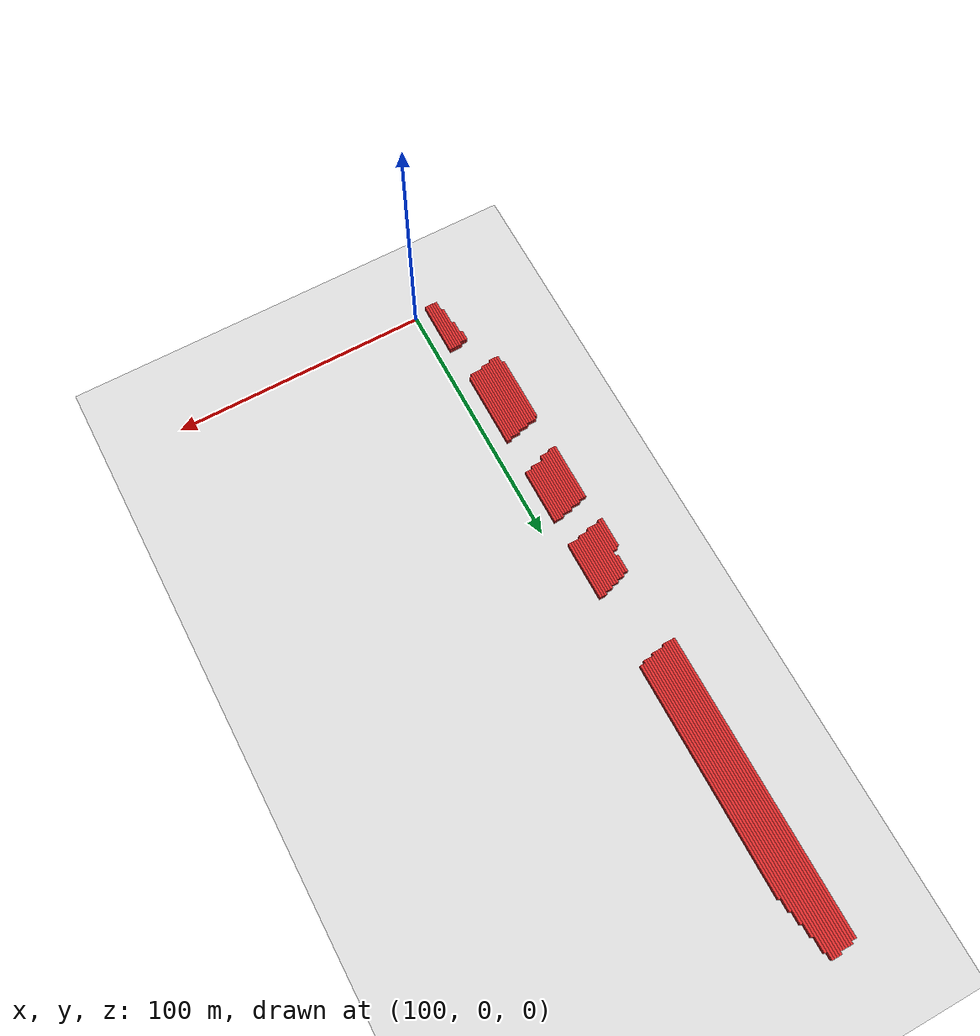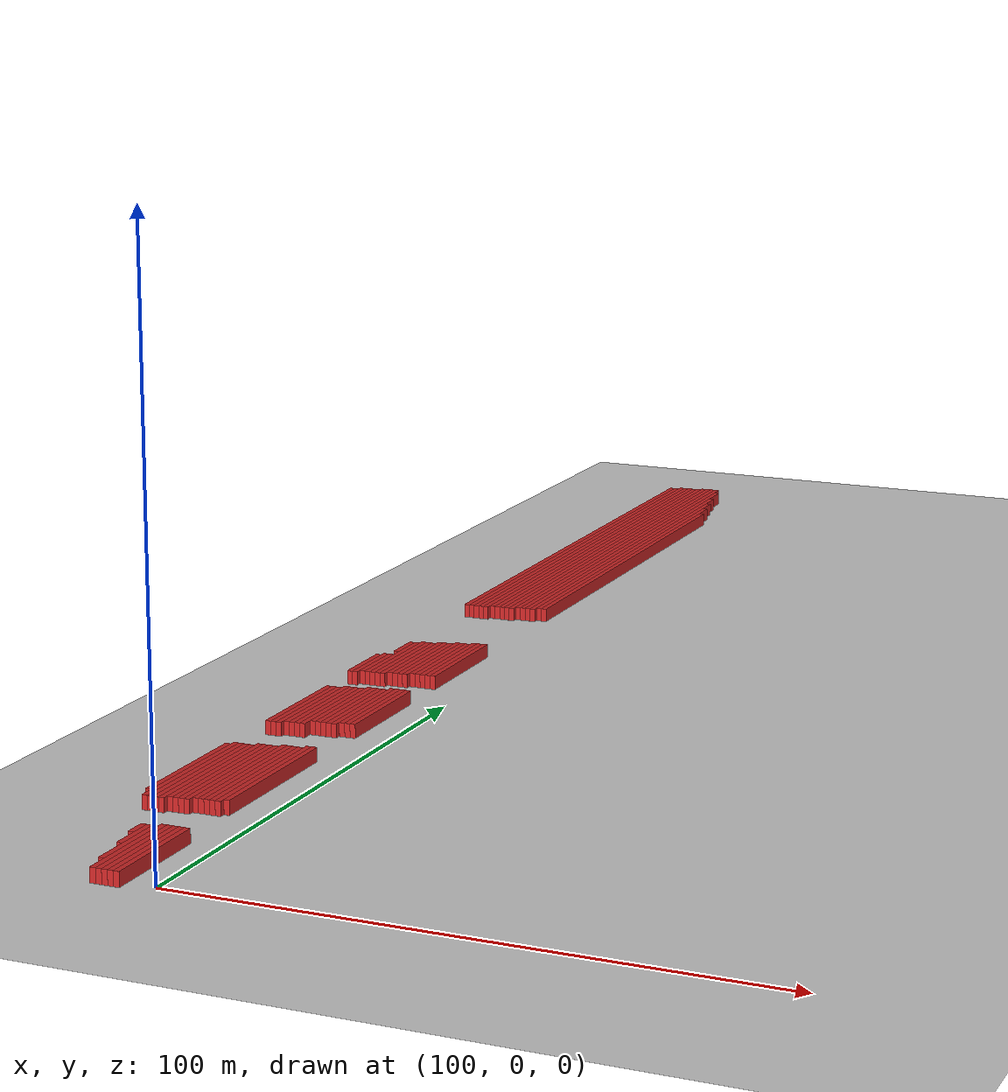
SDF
<sdf version="1.4">
 <world name="1_wall">
  <model name="ground_plane">
   <static>1</static>
   <link name="link">
    <collision name="collision">
     <geometry><plane><normal>0 0 1</normal><size>1000 1000</size></plane></geometry>
     <surface><friction><ode><mu>100</mu><mu2>50</mu2></ode></friction></surface>
    </collision>
    <visual name="visual">
     <cast_shadows>0</cast_shadows>
     <geometry><plane><normal>0 0 1</normal><size>10000 10000</size></plane></geometry>
     <material>
      <script><uri>file://media/materials/scripts/gazebo.material</uri><name>Gazebo/Grey</name></script>
     </material>
    </visual>
    <velocity_decay><linear>0</linear><angular>0</angular></velocity_decay>
   </link>
  </model>
  <model name="Wall_214">
   <static>1</static>
   <link name="Wall_214">
    <collision name="Wall_Collision_214">
     <geometry><box><size>12.0 1.0 2.5</size></box></geometry>
     <pose>0 0 1.25 0 -0 0</pose>
    </collision>
    <visual name="Wall_Visual_214">
     <pose>0 0 1.25 0 -0 0</pose>
     <geometry><box><size>12.0 1.0 2.5</size></box></geometry>
     <material>
      <script><uri>file://media/materials/scripts/gazebo.material</uri><name>Gazebo/Red</name></script>
     </material>
    </visual>
    <velocity_decay><linear>0</linear><angular>0</angular></velocity_decay>
    <pose>78.5 112.0 0 0 0 1.5707963267948966</pose>
   </link>
  </model>
  <model name="Wall_215">
   <static>1</static>
   <link name="Wall_215">
    <collision name="Wall_Collision_215">
     <geometry><box><size>114.0 1.0 2.5</size></box></geometry>
     <pose>0 0 1.25 0 -0 0</pose>
    </collision>
    <visual name="Wall_Visual_215">
     <pose>0 0 1.25 0 -0 0</pose>
     <geometry><box><size>114.0 1.0 2.5</size></box></geometry>
     <material>
      <script><uri>file://media/materials/scripts/gazebo.material</uri><name>Gazebo/Red</name></script>
     </material>
    </visual>
    <velocity_decay><linear>0</linear><angular>0</angular></velocity_decay>
    <pose>78.5 214.0 0 0 0 1.5707963267948966</pose>
   </link>
  </model>
  <model name="Wall_216">
   <static>1</static>
   <link name="Wall_216">
    <collision name="Wall_Collision_216">
     <geometry><box><size>26.0 1.0 2.5</size></box></geometry>
     <pose>0 0 1.25 0 -0 0</pose>
    </collision>
    <visual name="Wall_Visual_216">
     <pose>0 0 1.25 0 -0 0</pose>
     <geometry><box><size>26.0 1.0 2.5</size></box></geometry>
     <material>
      <script><uri>file://media/materials/scripts/gazebo.material</uri><name>Gazebo/Red</name></script>
     </material>
    </visual>
    <velocity_decay><linear>0</linear><angular>0</angular></velocity_decay>
    <pose>79.5 46.0 0 0 0 1.5707963267948966</pose>
   </link>
  </model>
  <model name="Wall_217">
   <static>1</static>
   <link name="Wall_217">
    <collision name="Wall_Collision_217">
     <geometry><box><size>23.0 1.0 2.5</size></box></geometry>
     <pose>0 0 1.25 0 -0 0</pose>
    </collision>
    <visual name="Wall_Visual_217">
     <pose>0 0 1.25 0 -0 0</pose>
     <geometry><box><size>23.0 1.0 2.5</size></box></geometry>
     <material>
      <script><uri>file://media/materials/scripts/gazebo.material</uri><name>Gazebo/Red</name></script>
     </material>
    </visual>
    <velocity_decay><linear>0</linear><angular>0</angular></velocity_decay>
    <pose>79.5 84.5 0 0 0 1.5707963267948966</pose>
   </link>
  </model>
  <model name="Wall_218">
   <static>1</static>
   <link name="Wall_218">
    <collision name="Wall_Collision_218">
     <geometry><box><size>13.0 1.0 2.5</size></box></geometry>
     <pose>0 0 1.25 0 -0 0</pose>
    </collision>
    <visual name="Wall_Visual_218">
     <pose>0 0 1.25 0 -0 0</pose>
     <geometry><box><size>13.0 1.0 2.5</size></box></geometry>
     <material>
      <script><uri>file://media/materials/scripts/gazebo.material</uri><name>Gazebo/Red</name></script>
     </material>
    </visual>
    <velocity_decay><linear>0</linear><angular>0</angular></velocity_decay>
    <pose>79.5 112.5 0 0 0 1.5707963267948966</pose>
   </link>
  </model>
  <model name="Wall_219">
   <static>1</static>
   <link name="Wall_219">
    <collision name="Wall_Collision_219">
     <geometry><box><size>114.0 1.0 2.5</size></box></geometry>
     <pose>0 0 1.25 0 -0 0</pose>
    </collision>
    <visual name="Wall_Visual_219">
     <pose>0 0 1.25 0 -0 0</pose>
     <geometry><box><size>114.0 1.0 2.5</size></box></geometry>
     <material>
      <script><uri>file://media/materials/scripts/gazebo.material</uri><name>Gazebo/Red</name></script>
     </material>
    </visual>
    <velocity_decay><linear>0</linear><angular>0</angular></velocity_decay>
    <pose>79.5 214.0 0 0 0 1.5707963267948966</pose>
   </link>
  </model>
  <model name="Wall_220">
   <static>1</static>
   <link name="Wall_220">
    <collision name="Wall_Collision_220">
     <geometry><box><size>30.0 1.0 2.5</size></box></geometry>
     <pose>0 0 1.25 0 -0 0</pose>
    </collision>
    <visual name="Wall_Visual_220">
     <pose>0 0 1.25 0 -0 0</pose>
     <geometry><box><size>30.0 1.0 2.5</size></box></geometry>
     <material>
      <script><uri>file://media/materials/scripts/gazebo.material</uri><name>Gazebo/Red</name></script>
     </material>
    </visual>
    <velocity_decay><linear>0</linear><angular>0</angular></velocity_decay>
    <pose>80.5 45.0 0 0 0 1.5707963267948966</pose>
   </link>
  </model>
  <model name="Wall_221">
   <static>1</static>
   <link name="Wall_221">
    <collision name="Wall_Collision_221">
     <geometry><box><size>23.0 1.0 2.5</size></box></geometry>
     <pose>0 0 1.25 0 -0 0</pose>
    </collision>
    <visual name="Wall_Visual_221">
     <pose>0 0 1.25 0 -0 0</pose>
     <geometry><box><size>23.0 1.0 2.5</size></box></geometry>
     <material>
      <script><uri>file://media/materials/scripts/gazebo.material</uri><name>Gazebo/Red</name></script>
     </material>
    </visual>
    <velocity_decay><linear>0</linear><angular>0</angular></velocity_decay>
    <pose>80.5 84.5 0 0 0 1.5707963267948966</pose>
   </link>
  </model>
  <model name="Wall_222">
   <static>1</static>
   <link name="Wall_222">
    <collision name="Wall_Collision_222">
     <geometry><box><size>12.0 1.0 2.5</size></box></geometry>
     <pose>0 0 1.25 0 -0 0</pose>
    </collision>
    <visual name="Wall_Visual_222">
     <pose>0 0 1.25 0 -0 0</pose>
     <geometry><box><size>12.0 1.0 2.5</size></box></geometry>
     <material>
      <script><uri>file://media/materials/scripts/gazebo.material</uri><name>Gazebo/Red</name></script>
     </material>
    </visual>
    <velocity_decay><linear>0</linear><angular>0</angular></velocity_decay>
    <pose>80.5 113.0 0 0 0 1.5707963267948966</pose>
   </link>
  </model>
  <model name="Wall_223">
   <static>1</static>
   <link name="Wall_223">
    <collision name="Wall_Collision_223">
     <geometry><box><size>7.0 1.0 2.5</size></box></geometry>
     <pose>0 0 1.25 0 -0 0</pose>
    </collision>
    <visual name="Wall_Visual_223">
     <pose>0 0 1.25 0 -0 0</pose>
     <geometry><box><size>7.0 1.0 2.5</size></box></geometry>
     <material>
      <script><uri>file://media/materials/scripts/gazebo.material</uri><name>Gazebo/Red</name></script>
     </material>
    </visual>
    <velocity_decay><linear>0</linear><angular>0</angular></velocity_decay>
    <pose>80.5 124.5 0 0 0 1.5707963267948966</pose>
   </link>
  </model>
  <model name="Wall_224">
   <static>1</static>
   <link name="Wall_224">
    <collision name="Wall_Collision_224">
     <geometry><box><size>115.0 1.0 2.5</size></box></geometry>
     <pose>0 0 1.25 0 -0 0</pose>
    </collision>
    <visual name="Wall_Visual_224">
     <pose>0 0 1.25 0 -0 0</pose>
     <geometry><box><size>115.0 1.0 2.5</size></box></geometry>
     <material>
      <script><uri>file://media/materials/scripts/gazebo.material</uri><name>Gazebo/Red</name></script>
     </material>
    </visual>
    <velocity_decay><linear>0</linear><angular>0</angular></velocity_decay>
    <pose>80.5 214.5 0 0 0 1.5707963267948966</pose>
   </link>
  </model>
  <model name="Wall_225">
   <static>1</static>
   <link name="Wall_225">
    <collision name="Wall_Collision_225">
     <geometry><box><size>30.0 1.0 2.5</size></box></geometry>
     <pose>0 0 1.25 0 -0 0</pose>
    </collision>
    <visual name="Wall_Visual_225">
     <pose>0 0 1.25 0 -0 0</pose>
     <geometry><box><size>30.0 1.0 2.5</size></box></geometry>
     <material>
      <script><uri>file://media/materials/scripts/gazebo.material</uri><name>Gazebo/Red</name></script>
     </material>
    </visual>
    <velocity_decay><linear>0</linear><angular>0</angular></velocity_decay>
    <pose>81.5 45.0 0 0 0 1.5707963267948966</pose>
   </link>
  </model>
  <model name="Wall_226">
   <static>1</static>
   <link name="Wall_226">
    <collision name="Wall_Collision_226">
     <geometry><box><size>23.0 1.0 2.5</size></box></geometry>
     <pose>0 0 1.25 0 -0 0</pose>
    </collision>
    <visual name="Wall_Visual_226">
     <pose>0 0 1.25 0 -0 0</pose>
     <geometry><box><size>23.0 1.0 2.5</size></box></geometry>
     <material>
      <script><uri>file://media/materials/scripts/gazebo.material</uri><name>Gazebo/Red</name></script>
     </material>
    </visual>
    <velocity_decay><linear>0</linear><angular>0</angular></velocity_decay>
    <pose>81.5 84.5 0 0 0 1.5707963267948966</pose>
   </link>
  </model>
  <model name="Wall_227">
   <static>1</static>
   <link name="Wall_227">
    <collision name="Wall_Collision_227">
     <geometry><box><size>21.0 1.0 2.5</size></box></geometry>
     <pose>0 0 1.25 0 -0 0</pose>
    </collision>
    <visual name="Wall_Visual_227">
     <pose>0 0 1.25 0 -0 0</pose>
     <geometry><box><size>21.0 1.0 2.5</size></box></geometry>
     <material>
      <script><uri>file://media/materials/scripts/gazebo.material</uri><name>Gazebo/Red</name></script>
     </material>
    </visual>
    <velocity_decay><linear>0</linear><angular>0</angular></velocity_decay>
    <pose>81.5 117.5 0 0 0 1.5707963267948966</pose>
   </link>
  </model>
  <model name="Wall_228">
   <static>1</static>
   <link name="Wall_228">
    <collision name="Wall_Collision_228">
     <geometry><box><size>115.0 1.0 2.5</size></box></geometry>
     <pose>0 0 1.25 0 -0 0</pose>
    </collision>
    <visual name="Wall_Visual_228">
     <pose>0 0 1.25 0 -0 0</pose>
     <geometry><box><size>115.0 1.0 2.5</size></box></geometry>
     <material>
      <script><uri>file://media/materials/scripts/gazebo.material</uri><name>Gazebo/Red</name></script>
     </material>
    </visual>
    <velocity_decay><linear>0</linear><angular>0</angular></velocity_decay>
    <pose>81.5 214.5 0 0 0 1.5707963267948966</pose>
   </link>
  </model>
  <model name="Wall_229">
   <static>1</static>
   <link name="Wall_229">
    <collision name="Wall_Collision_229">
     <geometry><box><size>30.0 1.0 2.5</size></box></geometry>
     <pose>0 0 1.25 0 -0 0</pose>
    </collision>
    <visual name="Wall_Visual_229">
     <pose>0 0 1.25 0 -0 0</pose>
     <geometry><box><size>30.0 1.0 2.5</size></box></geometry>
     <material>
      <script><uri>file://media/materials/scripts/gazebo.material</uri><name>Gazebo/Red</name></script>
     </material>
    </visual>
    <velocity_decay><linear>0</linear><angular>0</angular></velocity_decay>
    <pose>82.5 45.0 0 0 0 1.5707963267948966</pose>
   </link>
  </model>
  <model name="Wall_230">
   <static>1</static>
   <link name="Wall_230">
    <collision name="Wall_Collision_230">
     <geometry><box><size>23.0 1.0 2.5</size></box></geometry>
     <pose>0 0 1.25 0 -0 0</pose>
    </collision>
    <visual name="Wall_Visual_230">
     <pose>0 0 1.25 0 -0 0</pose>
     <geometry><box><size>23.0 1.0 2.5</size></box></geometry>
     <material>
      <script><uri>file://media/materials/scripts/gazebo.material</uri><name>Gazebo/Red</name></script>
     </material>
    </visual>
    <velocity_decay><linear>0</linear><angular>0</angular></velocity_decay>
    <pose>82.5 85.5 0 0 0 1.5707963267948966</pose>
   </link>
  </model>
  <model name="Wall_231">
   <static>1</static>
   <link name="Wall_231">
    <collision name="Wall_Collision_231">
     <geometry><box><size>22.0 1.0 2.5</size></box></geometry>
     <pose>0 0 1.25 0 -0 0</pose>
    </collision>
    <visual name="Wall_Visual_231">
     <pose>0 0 1.25 0 -0 0</pose>
     <geometry><box><size>22.0 1.0 2.5</size></box></geometry>
     <material>
      <script><uri>file://media/materials/scripts/gazebo.material</uri><name>Gazebo/Red</name></script>
     </material>
    </visual>
    <velocity_decay><linear>0</linear><angular>0</angular></velocity_decay>
    <pose>82.5 118.0 0 0 0 1.5707963267948966</pose>
   </link>
  </model>
  <model name="Wall_232">
   <static>1</static>
   <link name="Wall_232">
    <collision name="Wall_Collision_232">
     <geometry><box><size>115.0 1.0 2.5</size></box></geometry>
     <pose>0 0 1.25 0 -0 0</pose>
    </collision>
    <visual name="Wall_Visual_232">
     <pose>0 0 1.25 0 -0 0</pose>
     <geometry><box><size>115.0 1.0 2.5</size></box></geometry>
     <material>
      <script><uri>file://media/materials/scripts/gazebo.material</uri><name>Gazebo/Red</name></script>
     </material>
    </visual>
    <velocity_decay><linear>0</linear><angular>0</angular></velocity_decay>
    <pose>82.5 214.5 0 0 0 1.5707963267948966</pose>
   </link>
  </model>
  <model name="Wall_233">
   <static>1</static>
   <link name="Wall_233">
    <collision name="Wall_Collision_233">
     <geometry><box><size>30.0 1.0 2.5</size></box></geometry>
     <pose>0 0 1.25 0 -0 0</pose>
    </collision>
    <visual name="Wall_Visual_233">
     <pose>0 0 1.25 0 -0 0</pose>
     <geometry><box><size>30.0 1.0 2.5</size></box></geometry>
     <material>
      <script><uri>file://media/materials/scripts/gazebo.material</uri><name>Gazebo/Red</name></script>
     </material>
    </visual>
    <velocity_decay><linear>0</linear><angular>0</angular></velocity_decay>
    <pose>83.5 45.0 0 0 0 1.5707963267948966</pose>
   </link>
  </model>
  <model name="Wall_234">
   <static>1</static>
   <link name="Wall_234">
    <collision name="Wall_Collision_234">
     <geometry><box><size>23.0 1.0 2.5</size></box></geometry>
     <pose>0 0 1.25 0 -0 0</pose>
    </collision>
    <visual name="Wall_Visual_234">
     <pose>0 0 1.25 0 -0 0</pose>
     <geometry><box><size>23.0 1.0 2.5</size></box></geometry>
     <material>
      <script><uri>file://media/materials/scripts/gazebo.material</uri><name>Gazebo/Red</name></script>
     </material>
    </visual>
    <velocity_decay><linear>0</linear><angular>0</angular></velocity_decay>
    <pose>83.5 85.5 0 0 0 1.5707963267948966</pose>
   </link>
  </model>
  <model name="Wall_235">
   <static>1</static>
   <link name="Wall_235">
    <collision name="Wall_Collision_235">
     <geometry><box><size>22.0 1.0 2.5</size></box></geometry>
     <pose>0 0 1.25 0 -0 0</pose>
    </collision>
    <visual name="Wall_Visual_235">
     <pose>0 0 1.25 0 -0 0</pose>
     <geometry><box><size>22.0 1.0 2.5</size></box></geometry>
     <material>
      <script><uri>file://media/materials/scripts/gazebo.material</uri><name>Gazebo/Red</name></script>
     </material>
    </visual>
    <velocity_decay><linear>0</linear><angular>0</angular></velocity_decay>
    <pose>83.5 118.0 0 0 0 1.5707963267948966</pose>
   </link>
  </model>
  <model name="Wall_236">
   <static>1</static>
   <link name="Wall_236">
    <collision name="Wall_Collision_236">
     <geometry><box><size>114.0 1.0 2.5</size></box></geometry>
     <pose>0 0 1.25 0 -0 0</pose>
    </collision>
    <visual name="Wall_Visual_236">
     <pose>0 0 1.25 0 -0 0</pose>
     <geometry><box><size>114.0 1.0 2.5</size></box></geometry>
     <material>
      <script><uri>file://media/materials/scripts/gazebo.material</uri><name>Gazebo/Red</name></script>
     </material>
    </visual>
    <velocity_decay><linear>0</linear><angular>0</angular></velocity_decay>
    <pose>83.5 215.0 0 0 0 1.5707963267948966</pose>
   </link>
  </model>
  <model name="Wall_237">
   <static>1</static>
   <link name="Wall_237">
    <collision name="Wall_Collision_237">
     <geometry><box><size>30.0 1.0 2.5</size></box></geometry>
     <pose>0 0 1.25 0 -0 0</pose>
    </collision>
    <visual name="Wall_Visual_237">
     <pose>0 0 1.25 0 -0 0</pose>
     <geometry><box><size>30.0 1.0 2.5</size></box></geometry>
     <material>
      <script><uri>file://media/materials/scripts/gazebo.material</uri><name>Gazebo/Red</name></script>
     </material>
    </visual>
    <velocity_decay><linear>0</linear><angular>0</angular></velocity_decay>
    <pose>84.5 46.0 0 0 0 1.5707963267948966</pose>
   </link>
  </model>
  <model name="Wall_238">
   <static>1</static>
   <link name="Wall_238">
    <collision name="Wall_Collision_238">
     <geometry><box><size>23.0 1.0 2.5</size></box></geometry>
     <pose>0 0 1.25 0 -0 0</pose>
    </collision>
    <visual name="Wall_Visual_238">
     <pose>0 0 1.25 0 -0 0</pose>
     <geometry><box><size>23.0 1.0 2.5</size></box></geometry>
     <material>
      <script><uri>file://media/materials/scripts/gazebo.material</uri><name>Gazebo/Red</name></script>
     </material>
    </visual>
    <velocity_decay><linear>0</linear><angular>0</angular></velocity_decay>
    <pose>84.5 85.5 0 0 0 1.5707963267948966</pose>
   </link>
  </model>
  <model name="Wall_239">
   <static>1</static>
   <link name="Wall_239">
    <collision name="Wall_Collision_239">
     <geometry><box><size>22.0 1.0 2.5</size></box></geometry>
     <pose>0 0 1.25 0 -0 0</pose>
    </collision>
    <visual name="Wall_Visual_239">
     <pose>0 0 1.25 0 -0 0</pose>
     <geometry><box><size>22.0 1.0 2.5</size></box></geometry>
     <material>
      <script><uri>file://media/materials/scripts/gazebo.material</uri><name>Gazebo/Red</name></script>
     </material>
    </visual>
    <velocity_decay><linear>0</linear><angular>0</angular></velocity_decay>
    <pose>84.5 118.0 0 0 0 1.5707963267948966</pose>
   </link>
  </model>
  <model name="Wall_240">
   <static>1</static>
   <link name="Wall_240">
    <collision name="Wall_Collision_240">
     <geometry><box><size>114.0 1.0 2.5</size></box></geometry>
     <pose>0 0 1.25 0 -0 0</pose>
    </collision>
    <visual name="Wall_Visual_240">
     <pose>0 0 1.25 0 -0 0</pose>
     <geometry><box><size>114.0 1.0 2.5</size></box></geometry>
     <material>
      <script><uri>file://media/materials/scripts/gazebo.material</uri><name>Gazebo/Red</name></script>
     </material>
    </visual>
    <velocity_decay><linear>0</linear><angular>0</angular></velocity_decay>
    <pose>84.5 215.0 0 0 0 1.5707963267948966</pose>
   </link>
  </model>
  <model name="Wall_241">
   <static>1</static>
   <link name="Wall_241">
    <collision name="Wall_Collision_241">
     <geometry><box><size>30.0 1.0 2.5</size></box></geometry>
     <pose>0 0 1.25 0 -0 0</pose>
    </collision>
    <visual name="Wall_Visual_241">
     <pose>0 0 1.25 0 -0 0</pose>
     <geometry><box><size>30.0 1.0 2.5</size></box></geometry>
     <material>
      <script><uri>file://media/materials/scripts/gazebo.material</uri><name>Gazebo/Red</name></script>
     </material>
    </visual>
    <velocity_decay><linear>0</linear><angular>0</angular></velocity_decay>
    <pose>85.5 46.0 0 0 0 1.5707963267948966</pose>
   </link>
  </model>
  <model name="Wall_242">
   <static>1</static>
   <link name="Wall_242">
    <collision name="Wall_Collision_242">
     <geometry><box><size>23.0 1.0 2.5</size></box></geometry>
     <pose>0 0 1.25 0 -0 0</pose>
    </collision>
    <visual name="Wall_Visual_242">
     <pose>0 0 1.25 0 -0 0</pose>
     <geometry><box><size>23.0 1.0 2.5</size></box></geometry>
     <material>
      <script><uri>file://media/materials/scripts/gazebo.material</uri><name>Gazebo/Red</name></script>
     </material>
    </visual>
    <velocity_decay><linear>0</linear><angular>0</angular></velocity_decay>
    <pose>85.5 85.5 0 0 0 1.5707963267948966</pose>
   </link>
  </model>
  <model name="Wall_243">
   <static>1</static>
   <link name="Wall_243">
    <collision name="Wall_Collision_243">
     <geometry><box><size>22.0 1.0 2.5</size></box></geometry>
     <pose>0 0 1.25 0 -0 0</pose>
    </collision>
    <visual name="Wall_Visual_243">
     <pose>0 0 1.25 0 -0 0</pose>
     <geometry><box><size>22.0 1.0 2.5</size></box></geometry>
     <material>
      <script><uri>file://media/materials/scripts/gazebo.material</uri><name>Gazebo/Red</name></script>
     </material>
    </visual>
    <velocity_decay><linear>0</linear><angular>0</angular></velocity_decay>
    <pose>85.5 119.0 0 0 0 1.5707963267948966</pose>
   </link>
  </model>
  <model name="Wall_244">
   <static>1</static>
   <link name="Wall_244">
    <collision name="Wall_Collision_244">
     <geometry><box><size>115.0 1.0 2.5</size></box></geometry>
     <pose>0 0 1.25 0 -0 0</pose>
    </collision>
    <visual name="Wall_Visual_244">
     <pose>0 0 1.25 0 -0 0</pose>
     <geometry><box><size>115.0 1.0 2.5</size></box></geometry>
     <material>
      <script><uri>file://media/materials/scripts/gazebo.material</uri><name>Gazebo/Red</name></script>
     </material>
    </visual>
    <velocity_decay><linear>0</linear><angular>0</angular></velocity_decay>
    <pose>85.5 215.5 0 0 0 1.5707963267948966</pose>
   </link>
  </model>
  <model name="Wall_245">
   <static>1</static>
   <link name="Wall_245">
    <collision name="Wall_Collision_245">
     <geometry><box><size>30.0 1.0 2.5</size></box></geometry>
     <pose>0 0 1.25 0 -0 0</pose>
    </collision>
    <visual name="Wall_Visual_245">
     <pose>0 0 1.25 0 -0 0</pose>
     <geometry><box><size>30.0 1.0 2.5</size></box></geometry>
     <material>
      <script><uri>file://media/materials/scripts/gazebo.material</uri><name>Gazebo/Red</name></script>
     </material>
    </visual>
    <velocity_decay><linear>0</linear><angular>0</angular></velocity_decay>
    <pose>86.5 46.0 0 0 0 1.5707963267948966</pose>
   </link>
  </model>
  <model name="Wall_246">
   <static>1</static>
   <link name="Wall_246">
    <collision name="Wall_Collision_246">
     <geometry><box><size>22.0 1.0 2.5</size></box></geometry>
     <pose>0 0 1.25 0 -0 0</pose>
    </collision>
    <visual name="Wall_Visual_246">
     <pose>0 0 1.25 0 -0 0</pose>
     <geometry><box><size>22.0 1.0 2.5</size></box></geometry>
     <material>
      <script><uri>file://media/materials/scripts/gazebo.material</uri><name>Gazebo/Red</name></script>
     </material>
    </visual>
    <velocity_decay><linear>0</linear><angular>0</angular></velocity_decay>
    <pose>86.5 87.0 0 0 0 1.5707963267948966</pose>
   </link>
  </model>
  <model name="Wall_247">
   <static>1</static>
   <link name="Wall_247">
    <collision name="Wall_Collision_247">
     <geometry><box><size>22.0 1.0 2.5</size></box></geometry>
     <pose>0 0 1.25 0 -0 0</pose>
    </collision>
    <visual name="Wall_Visual_247">
     <pose>0 0 1.25 0 -0 0</pose>
     <geometry><box><size>22.0 1.0 2.5</size></box></geometry>
     <material>
      <script><uri>file://media/materials/scripts/gazebo.material</uri><name>Gazebo/Red</name></script>
     </material>
    </visual>
    <velocity_decay><linear>0</linear><angular>0</angular></velocity_decay>
    <pose>86.5 119.0 0 0 0 1.5707963267948966</pose>
   </link>
  </model>
  <model name="Wall_248">
   <static>1</static>
   <link name="Wall_248">
    <collision name="Wall_Collision_248">
     <geometry><box><size>115.0 1.0 2.5</size></box></geometry>
     <pose>0 0 1.25 0 -0 0</pose>
    </collision>
    <visual name="Wall_Visual_248">
     <pose>0 0 1.25 0 -0 0</pose>
     <geometry><box><size>115.0 1.0 2.5</size></box></geometry>
     <material>
      <script><uri>file://media/materials/scripts/gazebo.material</uri><name>Gazebo/Red</name></script>
     </material>
    </visual>
    <velocity_decay><linear>0</linear><angular>0</angular></velocity_decay>
    <pose>86.5 215.5 0 0 0 1.5707963267948966</pose>
   </link>
  </model>
  <model name="Wall_249">
   <static>1</static>
   <link name="Wall_249">
    <collision name="Wall_Collision_249">
     <geometry><box><size>4.0 1.0 2.5</size></box></geometry>
     <pose>0 0 1.25 0 -0 0</pose>
    </collision>
    <visual name="Wall_Visual_249">
     <pose>0 0 1.25 0 -0 0</pose>
     <geometry><box><size>4.0 1.0 2.5</size></box></geometry>
     <material>
      <script><uri>file://media/materials/scripts/gazebo.material</uri><name>Gazebo/Red</name></script>
     </material>
    </visual>
    <velocity_decay><linear>0</linear><angular>0</angular></velocity_decay>
    <pose>87.5 16.0 0 0 0 1.5707963267948966</pose>
   </link>
  </model>
  <model name="Wall_250">
   <static>1</static>
   <link name="Wall_250">
    <collision name="Wall_Collision_250">
     <geometry><box><size>30.0 1.0 2.5</size></box></geometry>
     <pose>0 0 1.25 0 -0 0</pose>
    </collision>
    <visual name="Wall_Visual_250">
     <pose>0 0 1.25 0 -0 0</pose>
     <geometry><box><size>30.0 1.0 2.5</size></box></geometry>
     <material>
      <script><uri>file://media/materials/scripts/gazebo.material</uri><name>Gazebo/Red</name></script>
     </material>
    </visual>
    <velocity_decay><linear>0</linear><angular>0</angular></velocity_decay>
    <pose>87.5 46.0 0 0 0 1.5707963267948966</pose>
   </link>
  </model>
  <model name="Wall_251">
   <static>1</static>
   <link name="Wall_251">
    <collision name="Wall_Collision_251">
     <geometry><box><size>22.0 1.0 2.5</size></box></geometry>
     <pose>0 0 1.25 0 -0 0</pose>
    </collision>
    <visual name="Wall_Visual_251">
     <pose>0 0 1.25 0 -0 0</pose>
     <geometry><box><size>22.0 1.0 2.5</size></box></geometry>
     <material>
      <script><uri>file://media/materials/scripts/gazebo.material</uri><name>Gazebo/Red</name></script>
     </material>
    </visual>
    <velocity_decay><linear>0</linear><angular>0</angular></velocity_decay>
    <pose>87.5 87.0 0 0 0 1.5707963267948966</pose>
   </link>
  </model>
  <model name="Wall_252">
   <static>1</static>
   <link name="Wall_252">
    <collision name="Wall_Collision_252">
     <geometry><box><size>22.0 1.0 2.5</size></box></geometry>
     <pose>0 0 1.25 0 -0 0</pose>
    </collision>
    <visual name="Wall_Visual_252">
     <pose>0 0 1.25 0 -0 0</pose>
     <geometry><box><size>22.0 1.0 2.5</size></box></geometry>
     <material>
      <script><uri>file://media/materials/scripts/gazebo.material</uri><name>Gazebo/Red</name></script>
     </material>
    </visual>
    <velocity_decay><linear>0</linear><angular>0</angular></velocity_decay>
    <pose>87.5 119.0 0 0 0 1.5707963267948966</pose>
   </link>
  </model>
  <model name="Wall_253">
   <static>1</static>
   <link name="Wall_253">
    <collision name="Wall_Collision_253">
     <geometry><box><size>115.0 1.0 2.5</size></box></geometry>
     <pose>0 0 1.25 0 -0 0</pose>
    </collision>
    <visual name="Wall_Visual_253">
     <pose>0 0 1.25 0 -0 0</pose>
     <geometry><box><size>115.0 1.0 2.5</size></box></geometry>
     <material>
      <script><uri>file://media/materials/scripts/gazebo.material</uri><name>Gazebo/Red</name></script>
     </material>
    </visual>
    <velocity_decay><linear>0</linear><angular>0</angular></velocity_decay>
    <pose>87.5 215.5 0 0 0 1.5707963267948966</pose>
   </link>
  </model>
  <model name="Wall_254">
   <static>1</static>
   <link name="Wall_254">
    <collision name="Wall_Collision_254">
     <geometry><box><size>9.0 1.0 2.5</size></box></geometry>
     <pose>0 0 1.25 0 -0 0</pose>
    </collision>
    <visual name="Wall_Visual_254">
     <pose>0 0 1.25 0 -0 0</pose>
     <geometry><box><size>9.0 1.0 2.5</size></box></geometry>
     <material>
      <script><uri>file://media/materials/scripts/gazebo.material</uri><name>Gazebo/Red</name></script>
     </material>
    </visual>
    <velocity_decay><linear>0</linear><angular>0</angular></velocity_decay>
    <pose>88.5 13.5 0 0 0 1.5707963267948966</pose>
   </link>
  </model>
  <model name="Wall_255">
   <static>1</static>
   <link name="Wall_255">
    <collision name="Wall_Collision_255">
     <geometry><box><size>30.0 1.0 2.5</size></box></geometry>
     <pose>0 0 1.25 0 -0 0</pose>
    </collision>
    <visual name="Wall_Visual_255">
     <pose>0 0 1.25 0 -0 0</pose>
     <geometry><box><size>30.0 1.0 2.5</size></box></geometry>
     <material>
      <script><uri>file://media/materials/scripts/gazebo.material</uri><name>Gazebo/Red</name></script>
     </material>
    </visual>
    <velocity_decay><linear>0</linear><angular>0</angular></velocity_decay>
    <pose>88.5 47.0 0 0 0 1.5707963267948966</pose>
   </link>
  </model>
  <model name="Wall_256">
   <static>1</static>
   <link name="Wall_256">
    <collision name="Wall_Collision_256">
     <geometry><box><size>22.0 1.0 2.5</size></box></geometry>
     <pose>0 0 1.25 0 -0 0</pose>
    </collision>
    <visual name="Wall_Visual_256">
     <pose>0 0 1.25 0 -0 0</pose>
     <geometry><box><size>22.0 1.0 2.5</size></box></geometry>
     <material>
      <script><uri>file://media/materials/scripts/gazebo.material</uri><name>Gazebo/Red</name></script>
     </material>
    </visual>
    <velocity_decay><linear>0</linear><angular>0</angular></velocity_decay>
    <pose>88.5 87.0 0 0 0 1.5707963267948966</pose>
   </link>
  </model>
  <model name="Wall_257">
   <static>1</static>
   <link name="Wall_257">
    <collision name="Wall_Collision_257">
     <geometry><box><size>23.0 1.0 2.5</size></box></geometry>
     <pose>0 0 1.25 0 -0 0</pose>
    </collision>
    <visual name="Wall_Visual_257">
     <pose>0 0 1.25 0 -0 0</pose>
     <geometry><box><size>23.0 1.0 2.5</size></box></geometry>
     <material>
      <script><uri>file://media/materials/scripts/gazebo.material</uri><name>Gazebo/Red</name></script>
     </material>
    </visual>
    <velocity_decay><linear>0</linear><angular>0</angular></velocity_decay>
    <pose>88.5 119.5 0 0 0 1.5707963267948966</pose>
   </link>
  </model>
  <model name="Wall_258">
   <static>1</static>
   <link name="Wall_258">
    <collision name="Wall_Collision_258">
     <geometry><box><size>114.0 1.0 2.5</size></box></geometry>
     <pose>0 0 1.25 0 -0 0</pose>
    </collision>
    <visual name="Wall_Visual_258">
     <pose>0 0 1.25 0 -0 0</pose>
     <geometry><box><size>114.0 1.0 2.5</size></box></geometry>
     <material>
      <script><uri>file://media/materials/scripts/gazebo.material</uri><name>Gazebo/Red</name></script>
     </material>
    </visual>
    <velocity_decay><linear>0</linear><angular>0</angular></velocity_decay>
    <pose>88.5 216.0 0 0 0 1.5707963267948966</pose>
   </link>
  </model>
  <model name="Wall_259">
   <static>1</static>
   <link name="Wall_259">
    <collision name="Wall_Collision_259">
     <geometry><box><size>16.0 1.0 2.5</size></box></geometry>
     <pose>0 0 1.25 0 -0 0</pose>
    </collision>
    <visual name="Wall_Visual_259">
     <pose>0 0 1.25 0 -0 0</pose>
     <geometry><box><size>16.0 1.0 2.5</size></box></geometry>
     <material>
      <script><uri>file://media/materials/scripts/gazebo.material</uri><name>Gazebo/Red</name></script>
     </material>
    </visual>
    <velocity_decay><linear>0</linear><angular>0</angular></velocity_decay>
    <pose>89.5 10.0 0 0 0 1.5707963267948966</pose>
   </link>
  </model>
  <model name="Wall_260">
   <static>1</static>
   <link name="Wall_260">
    <collision name="Wall_Collision_260">
     <geometry><box><size>30.0 1.0 2.5</size></box></geometry>
     <pose>0 0 1.25 0 -0 0</pose>
    </collision>
    <visual name="Wall_Visual_260">
     <pose>0 0 1.25 0 -0 0</pose>
     <geometry><box><size>30.0 1.0 2.5</size></box></geometry>
     <material>
      <script><uri>file://media/materials/scripts/gazebo.material</uri><name>Gazebo/Red</name></script>
     </material>
    </visual>
    <velocity_decay><linear>0</linear><angular>0</angular></velocity_decay>
    <pose>89.5 47.0 0 0 0 1.5707963267948966</pose>
   </link>
  </model>
  <model name="Wall_261">
   <static>1</static>
   <link name="Wall_261">
    <collision name="Wall_Collision_261">
     <geometry><box><size>22.0 1.0 2.5</size></box></geometry>
     <pose>0 0 1.25 0 -0 0</pose>
    </collision>
    <visual name="Wall_Visual_261">
     <pose>0 0 1.25 0 -0 0</pose>
     <geometry><box><size>22.0 1.0 2.5</size></box></geometry>
     <material>
      <script><uri>file://media/materials/scripts/gazebo.material</uri><name>Gazebo/Red</name></script>
     </material>
    </visual>
    <velocity_decay><linear>0</linear><angular>0</angular></velocity_decay>
    <pose>89.5 87.0 0 0 0 1.5707963267948966</pose>
   </link>
  </model>
  <model name="Wall_262">
   <static>1</static>
   <link name="Wall_262">
    <collision name="Wall_Collision_262">
     <geometry><box><size>22.0 1.0 2.5</size></box></geometry>
     <pose>0 0 1.25 0 -0 0</pose>
    </collision>
    <visual name="Wall_Visual_262">
     <pose>0 0 1.25 0 -0 0</pose>
     <geometry><box><size>22.0 1.0 2.5</size></box></geometry>
     <material>
      <script><uri>file://media/materials/scripts/gazebo.material</uri><name>Gazebo/Red</name></script>
     </material>
    </visual>
    <velocity_decay><linear>0</linear><angular>0</angular></velocity_decay>
    <pose>89.5 120.0 0 0 0 1.5707963267948966</pose>
   </link>
  </model>
  <model name="Wall_263">
   <static>1</static>
   <link name="Wall_263">
    <collision name="Wall_Collision_263">
     <geometry><box><size>111.0 1.0 2.5</size></box></geometry>
     <pose>0 0 1.25 0 -0 0</pose>
    </collision>
    <visual name="Wall_Visual_263">
     <pose>0 0 1.25 0 -0 0</pose>
     <geometry><box><size>111.0 1.0 2.5</size></box></geometry>
     <material>
      <script><uri>file://media/materials/scripts/gazebo.material</uri><name>Gazebo/Red</name></script>
     </material>
    </visual>
    <velocity_decay><linear>0</linear><angular>0</angular></velocity_decay>
    <pose>89.5 214.5 0 0 0 1.5707963267948966</pose>
   </link>
  </model>
  <model name="Wall_264">
   <static>1</static>
   <link name="Wall_264">
    <collision name="Wall_Collision_264">
     <geometry><box><size>21.0 1.0 2.5</size></box></geometry>
     <pose>0 0 1.25 0 -0 0</pose>
    </collision>
    <visual name="Wall_Visual_264">
     <pose>0 0 1.25 0 -0 0</pose>
     <geometry><box><size>21.0 1.0 2.5</size></box></geometry>
     <material>
      <script><uri>file://media/materials/scripts/gazebo.material</uri><name>Gazebo/Red</name></script>
     </material>
    </visual>
    <velocity_decay><linear>0</linear><angular>0</angular></velocity_decay>
    <pose>90.5 8.5 0 0 0 1.5707963267948966</pose>
   </link>
  </model>
  <model name="Wall_265">
   <static>1</static>
   <link name="Wall_265">
    <collision name="Wall_Collision_265">
     <geometry><box><size>30.0 1.0 2.5</size></box></geometry>
     <pose>0 0 1.25 0 -0 0</pose>
    </collision>
    <visual name="Wall_Visual_265">
     <pose>0 0 1.25 0 -0 0</pose>
     <geometry><box><size>30.0 1.0 2.5</size></box></geometry>
     <material>
      <script><uri>file://media/materials/scripts/gazebo.material</uri><name>Gazebo/Red</name></script>
     </material>
    </visual>
    <velocity_decay><linear>0</linear><angular>0</angular></velocity_decay>
    <pose>90.5 47.0 0 0 0 1.5707963267948966</pose>
   </link>
  </model>
  <model name="Wall_266">
   <static>1</static>
   <link name="Wall_266">
    <collision name="Wall_Collision_266">
     <geometry><box><size>23.0 1.0 2.5</size></box></geometry>
     <pose>0 0 1.25 0 -0 0</pose>
    </collision>
    <visual name="Wall_Visual_266">
     <pose>0 0 1.25 0 -0 0</pose>
     <geometry><box><size>23.0 1.0 2.5</size></box></geometry>
     <material>
      <script><uri>file://media/materials/scripts/gazebo.material</uri><name>Gazebo/Red</name></script>
     </material>
    </visual>
    <velocity_decay><linear>0</linear><angular>0</angular></velocity_decay>
    <pose>90.5 87.5 0 0 0 1.5707963267948966</pose>
   </link>
  </model>
  <model name="Wall_267">
   <static>1</static>
   <link name="Wall_267">
    <collision name="Wall_Collision_267">
     <geometry><box><size>22.0 1.0 2.5</size></box></geometry>
     <pose>0 0 1.25 0 -0 0</pose>
    </collision>
    <visual name="Wall_Visual_267">
     <pose>0 0 1.25 0 -0 0</pose>
     <geometry><box><size>22.0 1.0 2.5</size></box></geometry>
     <material>
      <script><uri>file://media/materials/scripts/gazebo.material</uri><name>Gazebo/Red</name></script>
     </material>
    </visual>
    <velocity_decay><linear>0</linear><angular>0</angular></velocity_decay>
    <pose>90.5 120.0 0 0 0 1.5707963267948966</pose>
   </link>
  </model>
  <model name="Wall_268">
   <static>1</static>
   <link name="Wall_268">
    <collision name="Wall_Collision_268">
     <geometry><box><size>105.0 1.0 2.5</size></box></geometry>
     <pose>0 0 1.25 0 -0 0</pose>
    </collision>
    <visual name="Wall_Visual_268">
     <pose>0 0 1.25 0 -0 0</pose>
     <geometry><box><size>105.0 1.0 2.5</size></box></geometry>
     <material>
      <script><uri>file://media/materials/scripts/gazebo.material</uri><name>Gazebo/Red</name></script>
     </material>
    </visual>
    <velocity_decay><linear>0</linear><angular>0</angular></velocity_decay>
    <pose>90.5 211.5 0 0 0 1.5707963267948966</pose>
   </link>
  </model>
  <model name="Wall_269">
   <static>1</static>
   <link name="Wall_269">
    <collision name="Wall_Collision_269">
     <geometry><box><size>21.0 1.0 2.5</size></box></geometry>
     <pose>0 0 1.25 0 -0 0</pose>
    </collision>
    <visual name="Wall_Visual_269">
     <pose>0 0 1.25 0 -0 0</pose>
     <geometry><box><size>21.0 1.0 2.5</size></box></geometry>
     <material>
      <script><uri>file://media/materials/scripts/gazebo.material</uri><name>Gazebo/Red</name></script>
     </material>
    </visual>
    <velocity_decay><linear>0</linear><angular>0</angular></velocity_decay>
    <pose>91.5 8.5 0 0 0 1.5707963267948966</pose>
   </link>
  </model>
  <model name="Wall_270">
   <static>1</static>
   <link name="Wall_270">
    <collision name="Wall_Collision_270">
     <geometry><box><size>30.0 1.0 2.5</size></box></geometry>
     <pose>0 0 1.25 0 -0 0</pose>
    </collision>
    <visual name="Wall_Visual_270">
     <pose>0 0 1.25 0 -0 0</pose>
     <geometry><box><size>30.0 1.0 2.5</size></box></geometry>
     <material>
      <script><uri>file://media/materials/scripts/gazebo.material</uri><name>Gazebo/Red</name></script>
     </material>
    </visual>
    <velocity_decay><linear>0</linear><angular>0</angular></velocity_decay>
    <pose>91.5 47.0 0 0 0 1.5707963267948966</pose>
   </link>
  </model>
  <model name="Wall_271">
   <static>1</static>
   <link name="Wall_271">
    <collision name="Wall_Collision_271">
     <geometry><box><size>22.0 1.0 2.5</size></box></geometry>
     <pose>0 0 1.25 0 -0 0</pose>
    </collision>
    <visual name="Wall_Visual_271">
     <pose>0 0 1.25 0 -0 0</pose>
     <geometry><box><size>22.0 1.0 2.5</size></box></geometry>
     <material>
      <script><uri>file://media/materials/scripts/gazebo.material</uri><name>Gazebo/Red</name></script>
     </material>
    </visual>
    <velocity_decay><linear>0</linear><angular>0</angular></velocity_decay>
    <pose>91.5 88.0 0 0 0 1.5707963267948966</pose>
   </link>
  </model>
  <model name="Wall_272">
   <static>1</static>
   <link name="Wall_272">
    <collision name="Wall_Collision_272">
     <geometry><box><size>23.0 1.0 2.5</size></box></geometry>
     <pose>0 0 1.25 0 -0 0</pose>
    </collision>
    <visual name="Wall_Visual_272">
     <pose>0 0 1.25 0 -0 0</pose>
     <geometry><box><size>23.0 1.0 2.5</size></box></geometry>
     <material>
      <script><uri>file://media/materials/scripts/gazebo.material</uri><name>Gazebo/Red</name></script>
     </material>
    </visual>
    <velocity_decay><linear>0</linear><angular>0</angular></velocity_decay>
    <pose>91.5 120.5 0 0 0 1.5707963267948966</pose>
   </link>
  </model>
  <model name="Wall_273">
   <static>1</static>
   <link name="Wall_273">
    <collision name="Wall_Collision_273">
     <geometry><box><size>100.0 1.0 2.5</size></box></geometry>
     <pose>0 0 1.25 0 -0 0</pose>
    </collision>
    <visual name="Wall_Visual_273">
     <pose>0 0 1.25 0 -0 0</pose>
     <geometry><box><size>100.0 1.0 2.5</size></box></geometry>
     <material>
      <script><uri>file://media/materials/scripts/gazebo.material</uri><name>Gazebo/Red</name></script>
     </material>
    </visual>
    <velocity_decay><linear>0</linear><angular>0</angular></velocity_decay>
    <pose>91.5 209.0 0 0 0 1.5707963267948966</pose>
   </link>
  </model>
  <model name="Wall_274">
   <static>1</static>
   <link name="Wall_274">
    <collision name="Wall_Collision_274">
     <geometry><box><size>21.0 1.0 2.5</size></box></geometry>
     <pose>0 0 1.25 0 -0 0</pose>
    </collision>
    <visual name="Wall_Visual_274">
     <pose>0 0 1.25 0 -0 0</pose>
     <geometry><box><size>21.0 1.0 2.5</size></box></geometry>
     <material>
      <script><uri>file://media/materials/scripts/gazebo.material</uri><name>Gazebo/Red</name></script>
     </material>
    </visual>
    <velocity_decay><linear>0</linear><angular>0</angular></velocity_decay>
    <pose>92.5 8.5 0 0 0 1.5707963267948966</pose>
   </link>
  </model>
  <model name="Wall_275">
   <static>1</static>
   <link name="Wall_275">
    <collision name="Wall_Collision_275">
     <geometry><box><size>31.0 1.0 2.5</size></box></geometry>
     <pose>0 0 1.25 0 -0 0</pose>
    </collision>
    <visual name="Wall_Visual_275">
     <pose>0 0 1.25 0 -0 0</pose>
     <geometry><box><size>31.0 1.0 2.5</size></box></geometry>
     <material>
      <script><uri>file://media/materials/scripts/gazebo.material</uri><name>Gazebo/Red</name></script>
     </material>
    </visual>
    <velocity_decay><linear>0</linear><angular>0</angular></velocity_decay>
    <pose>92.5 47.5 0 0 0 1.5707963267948966</pose>
   </link>
  </model>
  <model name="Wall_276">
   <static>1</static>
   <link name="Wall_276">
    <collision name="Wall_Collision_276">
     <geometry><box><size>22.0 1.0 2.5</size></box></geometry>
     <pose>0 0 1.25 0 -0 0</pose>
    </collision>
    <visual name="Wall_Visual_276">
     <pose>0 0 1.25 0 -0 0</pose>
     <geometry><box><size>22.0 1.0 2.5</size></box></geometry>
     <material>
      <script><uri>file://media/materials/scripts/gazebo.material</uri><name>Gazebo/Red</name></script>
     </material>
    </visual>
    <velocity_decay><linear>0</linear><angular>0</angular></velocity_decay>
    <pose>92.5 88.0 0 0 0 1.5707963267948966</pose>
   </link>
  </model>
  <model name="Wall_277">
   <static>1</static>
   <link name="Wall_277">
    <collision name="Wall_Collision_277">
     <geometry><box><size>23.0 1.0 2.5</size></box></geometry>
     <pose>0 0 1.25 0 -0 0</pose>
    </collision>
    <visual name="Wall_Visual_277">
     <pose>0 0 1.25 0 -0 0</pose>
     <geometry><box><size>23.0 1.0 2.5</size></box></geometry>
     <material>
      <script><uri>file://media/materials/scripts/gazebo.material</uri><name>Gazebo/Red</name></script>
     </material>
    </visual>
    <velocity_decay><linear>0</linear><angular>0</angular></velocity_decay>
    <pose>92.5 120.5 0 0 0 1.5707963267948966</pose>
   </link>
  </model>
  <model name="Wall_278">
   <static>1</static>
   <link name="Wall_278">
    <collision name="Wall_Collision_278">
     <geometry><box><size>94.0 1.0 2.5</size></box></geometry>
     <pose>0 0 1.25 0 -0 0</pose>
    </collision>
    <visual name="Wall_Visual_278">
     <pose>0 0 1.25 0 -0 0</pose>
     <geometry><box><size>94.0 1.0 2.5</size></box></geometry>
     <material>
      <script><uri>file://media/materials/scripts/gazebo.material</uri><name>Gazebo/Red</name></script>
     </material>
    </visual>
    <velocity_decay><linear>0</linear><angular>0</angular></velocity_decay>
    <pose>92.5 207.0 0 0 0 1.5707963267948966</pose>
   </link>
  </model>
  <model name="Wall_279">
   <static>1</static>
   <link name="Wall_279">
    <collision name="Wall_Collision_279">
     <geometry><box><size>21.0 1.0 2.5</size></box></geometry>
     <pose>0 0 1.25 0 -0 0</pose>
    </collision>
    <visual name="Wall_Visual_279">
     <pose>0 0 1.25 0 -0 0</pose>
     <geometry><box><size>21.0 1.0 2.5</size></box></geometry>
     <material>
      <script><uri>file://media/materials/scripts/gazebo.material</uri><name>Gazebo/Red</name></script>
     </material>
    </visual>
    <velocity_decay><linear>0</linear><angular>0</angular></velocity_decay>
    <pose>93.5 8.5 0 0 0 1.5707963267948966</pose>
   </link>
  </model>
  <model name="Wall_280">
   <static>1</static>
   <link name="Wall_280">
    <collision name="Wall_Collision_280">
     <geometry><box><size>30.0 1.0 2.5</size></box></geometry>
     <pose>0 0 1.25 0 -0 0</pose>
    </collision>
    <visual name="Wall_Visual_280">
     <pose>0 0 1.25 0 -0 0</pose>
     <geometry><box><size>30.0 1.0 2.5</size></box></geometry>
     <material>
      <script><uri>file://media/materials/scripts/gazebo.material</uri><name>Gazebo/Red</name></script>
     </material>
    </visual>
    <velocity_decay><linear>0</linear><angular>0</angular></velocity_decay>
    <pose>93.5 48.0 0 0 0 1.5707963267948966</pose>
   </link>
  </model>
  <model name="Wall_281">
   <static>1</static>
   <link name="Wall_281">
    <collision name="Wall_Collision_281">
     <geometry><box><size>22.0 1.0 2.5</size></box></geometry>
     <pose>0 0 1.25 0 -0 0</pose>
    </collision>
    <visual name="Wall_Visual_281">
     <pose>0 0 1.25 0 -0 0</pose>
     <geometry><box><size>22.0 1.0 2.5</size></box></geometry>
     <material>
      <script><uri>file://media/materials/scripts/gazebo.material</uri><name>Gazebo/Red</name></script>
     </material>
    </visual>
    <velocity_decay><linear>0</linear><angular>0</angular></velocity_decay>
    <pose>93.5 88.0 0 0 0 1.5707963267948966</pose>
   </link>
  </model>
  <model name="Wall_282">
   <static>1</static>
   <link name="Wall_282">
    <collision name="Wall_Collision_282">
     <geometry><box><size>23.0 1.0 2.5</size></box></geometry>
     <pose>0 0 1.25 0 -0 0</pose>
    </collision>
    <visual name="Wall_Visual_282">
     <pose>0 0 1.25 0 -0 0</pose>
     <geometry><box><size>23.0 1.0 2.5</size></box></geometry>
     <material>
      <script><uri>file://media/materials/scripts/gazebo.material</uri><name>Gazebo/Red</name></script>
     </material>
    </visual>
    <velocity_decay><linear>0</linear><angular>0</angular></velocity_decay>
    <pose>93.5 120.5 0 0 0 1.5707963267948966</pose>
   </link>
  </model>
  <model name="Wall_283">
   <static>1</static>
   <link name="Wall_283">
    <collision name="Wall_Collision_283">
     <geometry><box><size>89.0 1.0 2.5</size></box></geometry>
     <pose>0 0 1.25 0 -0 0</pose>
    </collision>
    <visual name="Wall_Visual_283">
     <pose>0 0 1.25 0 -0 0</pose>
     <geometry><box><size>89.0 1.0 2.5</size></box></geometry>
     <material>
      <script><uri>file://media/materials/scripts/gazebo.material</uri><name>Gazebo/Red</name></script>
     </material>
    </visual>
    <velocity_decay><linear>0</linear><angular>0</angular></velocity_decay>
    <pose>93.5 204.5 0 0 0 1.5707963267948966</pose>
   </link>
  </model>
  <model name="Wall_284">
   <static>1</static>
   <link name="Wall_284">
    <collision name="Wall_Collision_284">
     <geometry><box><size>21.0 1.0 2.5</size></box></geometry>
     <pose>0 0 1.25 0 -0 0</pose>
    </collision>
    <visual name="Wall_Visual_284">
     <pose>0 0 1.25 0 -0 0</pose>
     <geometry><box><size>21.0 1.0 2.5</size></box></geometry>
     <material>
      <script><uri>file://media/materials/scripts/gazebo.material</uri><name>Gazebo/Red</name></script>
     </material>
    </visual>
    <velocity_decay><linear>0</linear><angular>0</angular></velocity_decay>
    <pose>94.5 8.5 0 0 0 1.5707963267948966</pose>
   </link>
  </model>
 </world>
</sdf>
